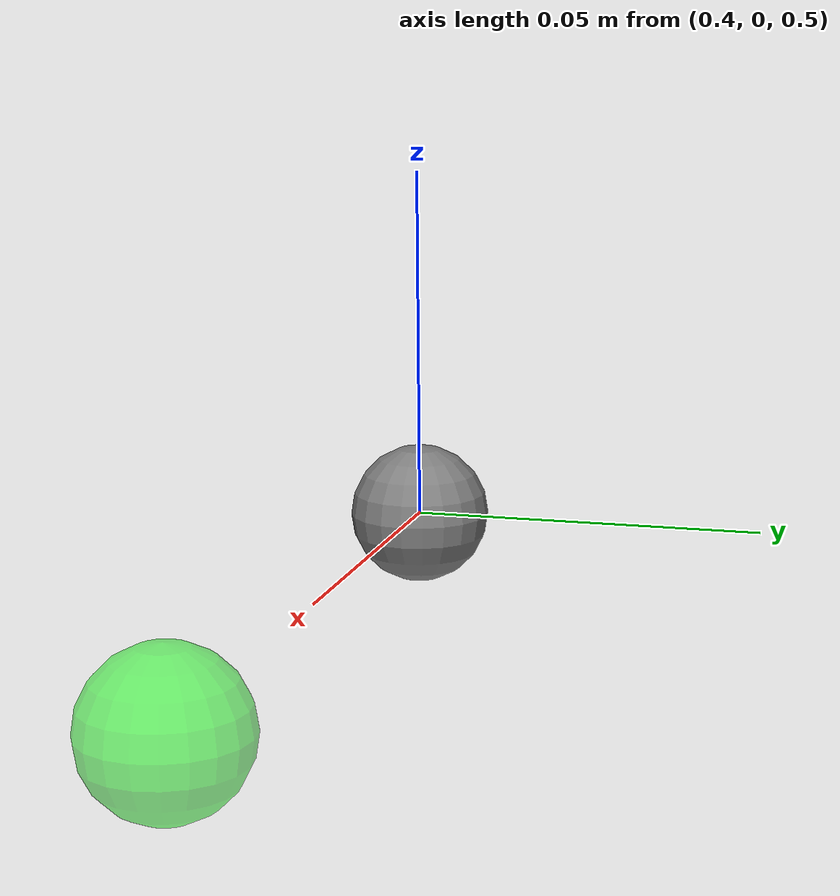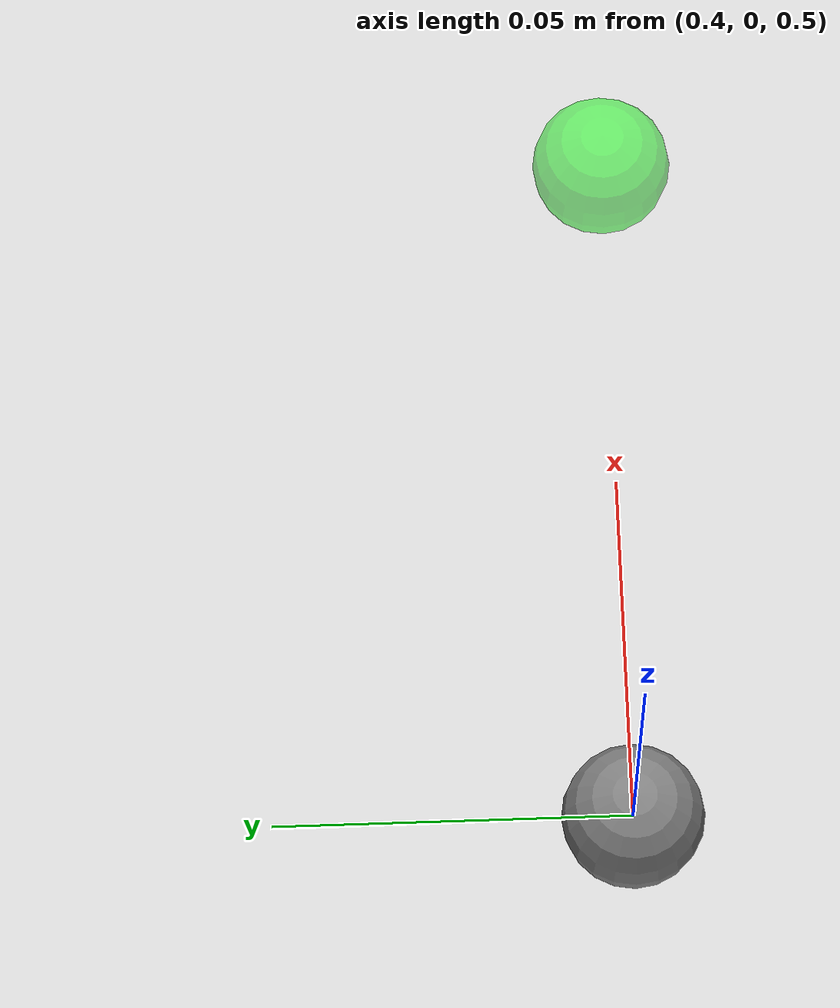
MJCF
<mujoco model="particle3d">
  <option timestep="0.01" iterations="1" ls_iterations="4">
    <flag contact="disable" eulerdamp="disable"/>
  </option>

  <default>
    <joint type="hinge" axis="0 0 1" limited="true" range="-.29 .29" damping="0" />
    <motor gear=".1" ctrlrange="-1 1" ctrllimited="true" />
    <default class="translation">
      <position kp="20" kv="5" ctrlrange="-1 1"/>
    </default>
  </default>

  <worldbody>
    <site name="reference" pos="0 0 0" size="0.01" rgba="0 0 0 0.0"/>

    <body name="goal" mocap="true" pos="0.5 0 0.5" quat="1 0 0 0">
      <geom type="sphere" size=".01" contype="0" conaffinity="0" rgba="0 1 0 .5" />
    </body>

    <body name="pointmass" pos="0.4 0 0.5" gravcomp="1">
      <joint type="free" />
      <geom name="pointmass" type="sphere" size=".01" mass=".3" />
      <site name="particle" pos="0 0 0" size="0.01" />
    </body>
  </worldbody>

  <actuator>
    <position name="x" site="particle" refsite="reference" gear="1 0 0 0 0 0" class="translation"/>
    <position name="y" site="particle" refsite="reference" gear="0 1 0 0 0 0" class="translation"/>
    <position name="z" site="particle" refsite="reference" gear="0 0 1 0 0 0" class="translation"/>
  </actuator>
</mujoco>
